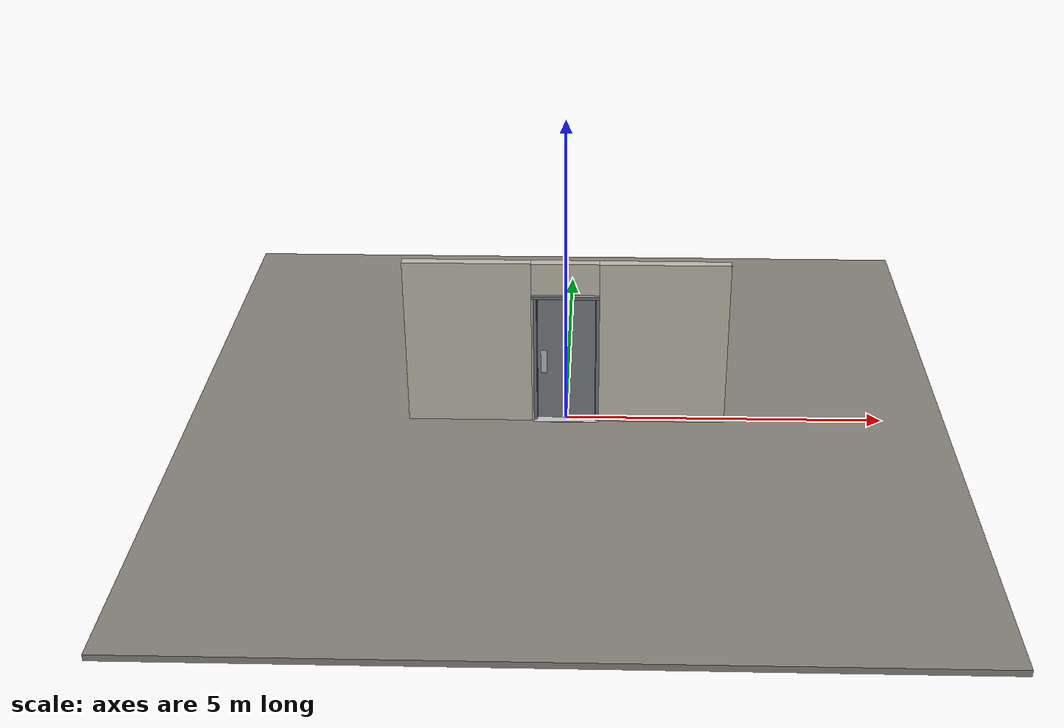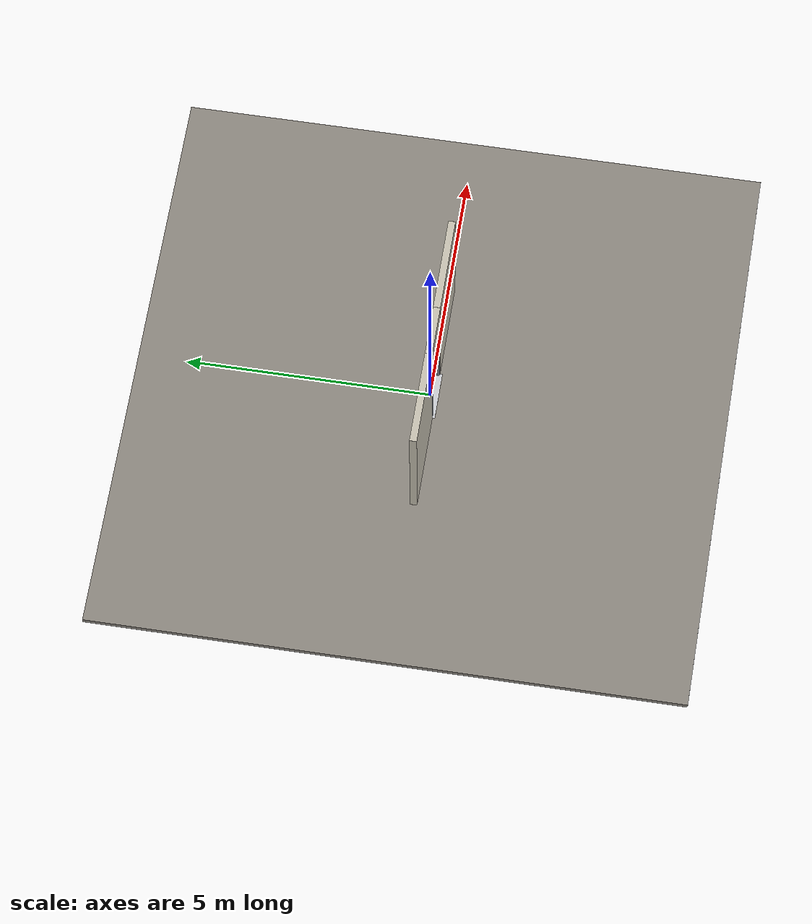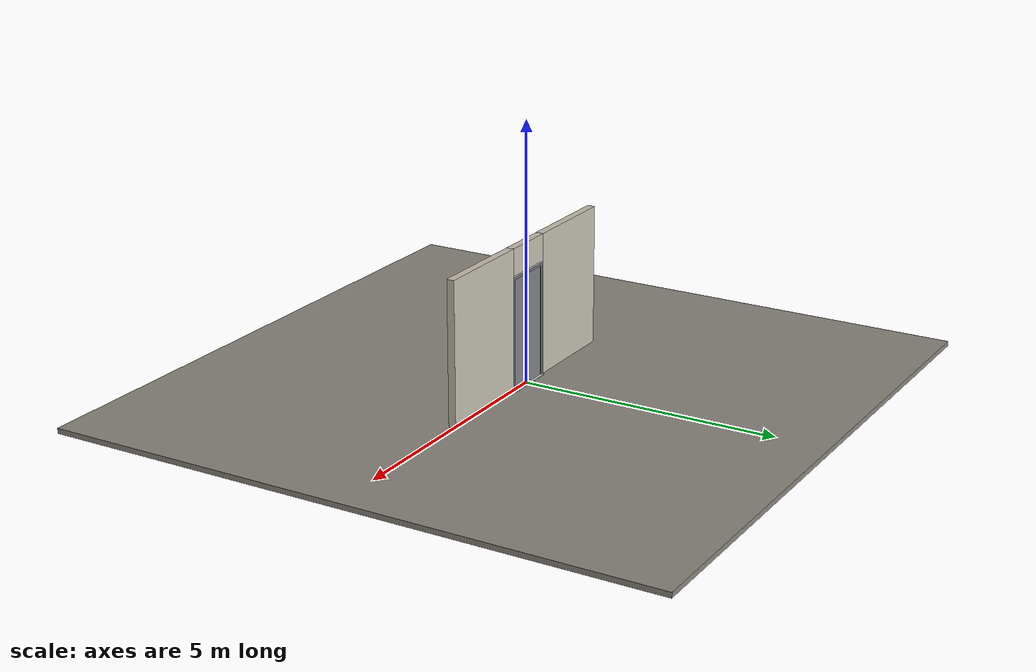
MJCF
<?xml version="1.0" ?>
<mujoco model="db0028_swing_single_minimal">
  <compiler angle="radian" meshdir="../../hardware" texturedir="../../textures" autolimits="true" inertiafromgeom="false"/>
  <option timestep="0.002" integrator="implicitfast" cone="elliptic" impratio="10" noslip_iterations="3">
    <flag multiccd="enable"/>
  </option>
  <size memory="16M"/>
  <default>
    <geom condim="4" solref="0.005 1" solimp="0.95 0.99 0.001"/>
    <joint solreflimit="0.005 1" solimplimit="0.95 0.99 0.001"/>
    <tendon solreflimit="0.005 1"/>
    <equality solref="0.002 1"/>
  </default>
  <visual>
    <headlight ambient="0.4 0.4 0.4" diffuse="0.7 0.7 0.7" specular="0.2 0.2 0.2"/>
    <quality shadowsize="4096"/>
    <map znear="0.01" zfar="60"/>
  </visual>
  <asset>
    <material name="mat_floor" rgba="0.55 0.53 0.5 1" specular="0.2" shininess="0.15" reflectance="0"/>
    <material name="mat_wall" rgba="0.78 0.76 0.7 1" specular="0.2" shininess="0.1" reflectance="0"/>
    <material name="mat_leaf" rgba="0.5 0.51 0.53 1" specular="0.23" shininess="0.52" reflectance="0.02"/>
    <material name="mat_hinge" rgba="0.65 0.66 0.68 1" specular="0.74" shininess="0.5" reflectance="0.36"/>
    <material name="mat_op_stainless" rgba="0.75 0.76 0.77 1" specular="0.8" shininess="0.65" reflectance="0.4"/>
    <material name="mat_frame" rgba="0.45 0.48 0.52 1" specular="0.32" shininess="0.6" reflectance="0.08"/>
    <material name="mat_seal" rgba="0.1 0.1 0.1 1" specular="0.2" shininess="0.1" reflectance="0"/>
    <material name="mat_threshold" rgba="0.8 0.81 0.83 1" specular="0.8" shininess="0.6" reflectance="0.4"/>
    <material name="mat_closer" rgba="0.22 0.17 0.13 1" specular="0.8" shininess="0.6" reflectance="0.4"/>
    <material name="mat_placard" rgba="0.95 0.75 0.05 1" specular="0.2" shininess="0.5" reflectance="0"/>
    <material name="mat_bumper_stop" rgba="0.08 0.08 0.08 1" specular="0.2" shininess="0.1" reflectance="0"/>
    <material name="mat_stop_base" rgba="0.9 0.9 0.92 1" specular="0.8" shininess="0.9" reflectance="0.4"/>
    <texture name="skybox" type="skybox" builtin="gradient" rgb1="0.6 0.7 0.85" rgb2="0.9 0.92 0.95" width="256" height="256"/>
  </asset>
  <worldbody>
    <light name="sun" pos="1.5 -2.5 4" dir="-0.3 0.5 -0.8" directional="true" diffuse="0.8 0.8 0.8" specular="0.3 0.3 0.3" castshadow="true"/>
    <light name="fill" pos="-1.5 2.5 3" dir="0.3 -0.5 -0.7" directional="true" diffuse="0.35 0.35 0.4" castshadow="false"/>
    <camera name="robot_view" pos="0 -2.681312 1.812087" xyaxes="1 0 0 0 0.26963 0.962964" fovy="52"/>
    <camera name="far_view" pos="0 2.594313 1.812087" xyaxes="-1 0 0 0 -0.26963 0.962964" fovy="52"/>
    <camera name="iso" pos="-2.004737 -2.259262 2.234138" xyaxes="0.741536 -0.670913 0 0.242917 0.268487 0.932151" fovy="46"/>
    <camera name="detail_handle" pos="-0.1735 -0.8435 1.296" xyaxes="0.97561 0.219512 0 -0.070934 0.315262 0.94635" fovy="38"/>
    <geom name="floor" type="box" size="6 6 0.05" pos="0 0 -0.05" material="mat_floor" group="0" contype="1" conaffinity="1" friction="0.8 0.005 0.0001" density="2400"/>
    <geom name="wall_left" type="box" size="0.97975 0.0725 1.3735" pos="-1.52025 -0.0435 1.3735" material="mat_wall" group="0" contype="1" conaffinity="1" friction="0.6 0.005 0.0001" density="800"/>
    <geom name="wall_right" type="box" size="0.99475 0.0725 1.3735" pos="1.50525 -0.0435 1.3735" material="mat_wall" group="0" contype="1" conaffinity="1" friction="0.6 0.005 0.0001" density="800"/>
    <geom name="wall_header" type="box" size="0.5255 0.0725 0.26" pos="-0.015 -0.0435 2.487" material="mat_wall" group="0" contype="1" conaffinity="1" friction="0.6 0.005 0.0001" density="800"/>
    <geom name="jamb_hinge" type="box" size="0.025 0.0725 1.0735" pos="0.4855 -0.0435 1.0735" material="mat_frame" group="0" contype="1" conaffinity="1" friction="0.6 0.005 0.0001" density="300"/>
    <geom name="jamb_strike" type="box" size="0.025 0.0725 1.0735" pos="-0.4855 -0.0435 1.0735" material="mat_frame" group="0" contype="1" conaffinity="1" friction="0.6 0.005 0.0001" density="300"/>
    <geom name="stud_strike" type="box" size="0.015 0.0725 1.0735" pos="-0.5255 -0.0435 1.0735" material="mat_wall" group="0" contype="1" conaffinity="1" friction="0.6 0.005 0.0001" density="500"/>
    <geom name="jamb_head" type="box" size="0.5255 0.0725 0.025" pos="-0.015 -0.0435 2.172" material="mat_frame" group="0" contype="1" conaffinity="1" friction="0.6 0.005 0.0001" density="300"/>
    <geom name="head_stud" type="box" size="0.5255 0.0725 0.015" pos="-0.015 -0.0435 2.212" material="mat_wall" group="0" contype="1" conaffinity="1" friction="0.6 0.005 0.0001" density="500"/>
    <geom name="stop_hinge" type="box" size="0.0055 0.016 1.0735" pos="0.455 -0.0385 1.0735" material="mat_frame" group="0" contype="1" conaffinity="1" friction="0.6 0.005 0.0001" density="300"/>
    <geom name="stop_strike" type="box" size="0.0055 0.016 1.0735" pos="-0.455 -0.0385 1.0735" material="mat_frame" group="0" contype="1" conaffinity="1" friction="0.6 0.005 0.0001" density="300"/>
    <geom name="stop_head" type="box" size="0.4605 0.016 0.0055" pos="0 -0.0385 2.1415" material="mat_frame" group="0" contype="1" conaffinity="1" friction="0.6 0.005 0.0001" density="300"/>
    <geom name="threshold" type="box" size="0.5105 0.1225 0.004" pos="0 -0.0435 0.004" material="mat_threshold" group="0" contype="1" conaffinity="1" friction="0.6 0.005 0.0001" density="2700"/>
    <site name="approach_point" pos="0 -1.5 0" quat="1 0 0 0" size="0.05" rgba="0.2 0.9 0.2 0.5" group="4"/>
    <site name="goal_point" pos="0 1.5 0" quat="1 0 0 0" size="0.05" rgba="0.2 0.9 0.2 0.5" group="4"/>
    <site name="door_plane_center" pos="0 0 1.0735" quat="1 0 0 0" size="0.02" rgba="0.2 0.9 0.2 0.5" group="4"/>
    <body name="leaf" pos="0.4605 0 0">
      <inertial pos="-0.463662 -0.000237 1.075376" mass="54.251637" quat="0.500126 0.499518 0.500463 -0.499892" diaginertia="3.816123256 20.392622162 24.19085208"/>
      <joint name="leaf_hinge" type="hinge" axis="0 0 -1" pos="-0.003 0.029 0" limited="true" range="0 1.570796" solreflimit="0.02 1" damping="12.268966" frictionloss="1.483306" stiffness="11.911156" springref="-1.783202" armature="0.02"/>
      <geom name="leaf_slab" type="box" size="0.457 0.022 1.067" pos="-0.46 0 1.076" material="mat_leaf" group="0" contype="1" conaffinity="1" friction="0.42 0.005 0.0001" density="1"/>
      <geom name="leaf_push_plate_n" type="box" size="0.05 0.0008 0.2" pos="-0.812 -0.0228 1.016" material="mat_op_stainless" group="1" contype="0" conaffinity="0" density="7900"/>
      <site name="leaf_push_plate_push_n" pos="-0.812 -0.022 1.016" quat="1 0 0 0" size="0.012" rgba="0.2 0.9 0.2 0.5" group="4"/>
      <site name="leaf_edge_mid" pos="-0.917 0 1.067" quat="1 0 0 0" size="0.02" rgba="0.2 0.9 0.2 0.5" group="4"/>
    </body>
  </worldbody>
  <sensor>
    <jointpos name="leaf_hinge_pos" joint="leaf_hinge"/>
    <jointvel name="leaf_hinge_vel" joint="leaf_hinge"/>
  </sensor>
</mujoco>
